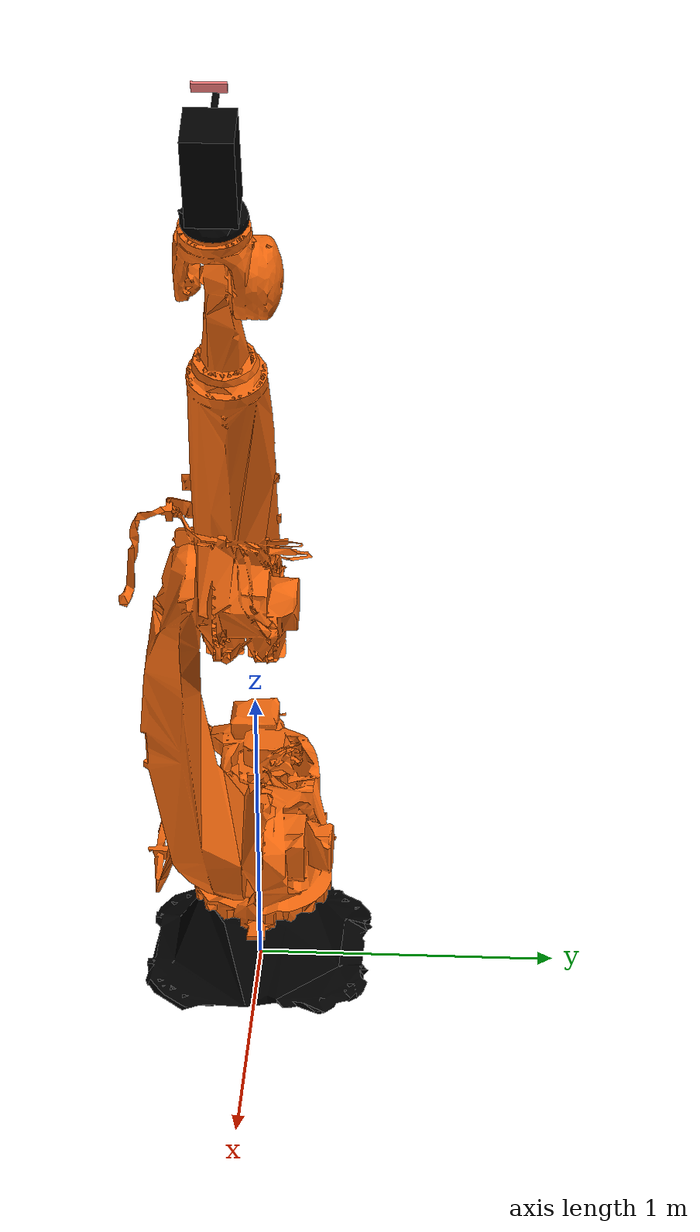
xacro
<?xml version="1.0"?>

<robot xmlns:xacro="http://www.ros.org/wiki/xacro" name="kuka">
    <!-- Include Gazebo Parameters -->
    <xacro:include filename="$(find kuka_description)/urdf/kuka_gazebo.xacro" />

    <!-- Include ros2_control Plugins -->
    <xacro:include filename="$(find kuka_description)/urdf/kuka_ros2_control.xacro" />
    <xacro:include filename="$(find kuka_description)/urdf/depth_camera.xacro" />

    <xacro:property name="PI" value="3.14159265359" />
    <xacro:property name="DEG2RAD" value="0.01745329251" />
    <xacro:property name="effort" value="30.0" />
    <xacro:property name="velocity" value="10.0" />

    <xacro:macro name="default_inertial" params="mass">
        <inertial>
            <origin xyz="0 0 0" rpy="0 0 0"/>
            <mass value="${mass}" />
            <inertia ixx="1.0" ixy="0.0" ixz="0.0"
                     iyy="1.0" iyz="0.0"
                     izz="1.0" />
        </inertial>
    </xacro:macro>

    <xacro:macro name="default_transmission" params="number">
        <transmission name="transmission_${number}">
            <plugin>transmission_interface/SimpleTransmission</plugin>
            <actuator name="motor_${number}" role="actuator1"/>
            <joint name="joint_${number}"    role="joint1">
                <mechanical_reduction>1.0</mechanical_reduction>
            </joint>
        </transmission>
    </xacro:macro>

    <!-- Links -->
    <link name="world"/>

    <link name="base_link">
        <xacro:default_inertial mass="0.1"/>
        <visual>
            <origin rpy="0 0 0" xyz="0 0 0"/>
            <geometry>
                <mesh filename="package://kuka_description/meshes/link0_exp.stl" scale="1 1 1"/>
            </geometry>
            <material name="">
                <color rgba="0 0 0 1"/>
            </material>
        </visual>
        <collision>
            <origin rpy="0 0 0" xyz="0 0 0"/>
            <geometry>
                <mesh filename="package://kuka_description/meshes/link0_exp.stl" scale="1 1 1"/>
            </geometry>
        </collision>
    </link>

    <link name="link_1">
        <xacro:default_inertial mass="0.1"/>
        <visual>
            <origin rpy="-${PI/2} 0 ${PI}" xyz="0.33 0 -0.67"/>
            <geometry>
                <mesh filename="package://kuka_description/meshes/link1_exp.stl" scale="1 1 1"/>
            </geometry>
            <material name="">
                <color rgba="0.9607 0.4117 0.0549 1"/>
            </material>
        </visual>
        <collision>
            <origin rpy="-${PI/2} 0 ${PI}" xyz="0.33 0 -0.67"/>
            <geometry>
                <mesh filename="package://kuka_description/meshes/link1_exp.stl" scale="1 1 1"/>
            </geometry>
        </collision>
    </link>

    <link name="link_2">
        <xacro:default_inertial mass="0.1"/>
        <visual>
            <origin rpy="0 0 ${-2*DEG2RAD}" xyz="1.176 -0.015 0.1"/>
            <geometry>
                <mesh filename="package://kuka_description/meshes/link2_exp.stl" scale="1 1 1"/>
            </geometry>
            <material name="">
                <color rgba="0.9607 0.4117 0.0549 1"/>
            </material>
        </visual>
        <collision>
            <origin rpy="0 0 ${-2*DEG2RAD}" xyz="1.176 -0.015 0.1"/>
            <geometry>
                <mesh filename="package://kuka_description/meshes/link2_exp.stl" scale="1 1 1"/>
            </geometry>
        </collision>
    </link>

    <link name="link_3">
        <xacro:default_inertial mass="0.1"/>
        <visual>
            <origin rpy="${PI/2} 0 ${PI/2}" xyz="-0.03 -0.15 0.01"/>
            <geometry>
                <mesh filename="package://kuka_description/meshes/link3_exp.stl" scale="1 1 1"/>
            </geometry>
            <material name="">
                <color rgba="0.9607 0.4117 0.0549 1"/>
            </material>
        </visual>
        <collision>
            <origin rpy="${PI/2} 0 ${PI/2}" xyz="-0.03 -0.15 0.01"/>
            <geometry>
                <mesh filename="package://kuka_description/meshes/link3_exp.stl" scale="1 1 1"/>
            </geometry>
        </collision>
    </link>

    <link name="link_4">
        <xacro:default_inertial mass="0.1"/>
        <visual>
            <origin rpy="-${PI/2} 0 0" xyz="0 0 -1.2"/>
            <geometry>
                <mesh filename="package://kuka_description/meshes/link4_exp.stl" scale="1 1 1"/>
            </geometry>
            <material name="">
                <color rgba="0.9607 0.4117 0.0549 1"/>
            </material>
        </visual>
        <collision>
            <origin rpy="-${PI/2} 0 0" xyz="0 0 -1.2"/>
            <geometry>
                <mesh filename="package://kuka_description/meshes/link4_exp.stl" scale="1 1 1"/>
            </geometry>
        </collision>
    </link>

    <link name="link_5">
        <xacro:default_inertial mass="0.1"/>
        <visual>
            <origin rpy="${PI/2} 0 ${PI/2}" xyz="-0.03 0 -0.01"/>
            <geometry>
                <mesh filename="package://kuka_description/meshes/link5_exp.stl" scale="1 1 1"/>
            </geometry>
            <material name="">
                <color rgba="0.9607 0.4117 0.0549 1"/>
            </material>
        </visual>
        <collision>
            <origin rpy="${PI/2} 0 ${PI/2}" xyz="-0.03 0 -0.01"/>
            <geometry>
                <mesh filename="package://kuka_description/meshes/link5_exp.stl" scale="1 1 1"/>
            </geometry>
        </collision>
    </link>

    <link name="link_6">
        <xacro:default_inertial mass="0.1"/>
        <visual>
            <origin rpy="0 0 ${PI}" xyz="0 0 0.02"/>
            <geometry>
                <mesh filename="package://kuka_description/meshes/link6_exp.stl" scale="1 1 1"/>
            </geometry>
            <material name="">
                <color rgba="0 0 0 1"/>
            </material>
        </visual>
        <collision>
            <origin rpy="0 0 ${PI}" xyz="0 0 0.02"/>
            <geometry>
                <mesh filename="package://kuka_description/meshes/link6_exp.stl" scale="1 1 1"/>
            </geometry>
        </collision>
    </link>

    <!-- Joints -->
    <!-- Joint Limit Should be justified -->
    <joint name="virtual_joint" type="fixed">
        <parent link="world"/>
        <child link="base_link"/>
        <origin xyz="0 0 0" rpy="0 0 0"/>
    </joint>

    <joint name ="joint_1" type="revolute">
        <parent link="base_link"/>
        <child link = "link_1"/>
        <origin rpy="${PI} 0 0" xyz="0 0 0"/>
        <axis xyz="0 0 1"/>
        <limit lower="-${185*DEG2RAD}" upper="${185*DEG2RAD}"
               effort="${effort}" velocity="${velocity}"/>
    </joint>

    <joint name ="joint_2" type="revolute">
        <parent link="link_1"/>
        <child link = "link_2"/>
        <origin rpy="${PI / 2} 0 0" xyz="0.33 0 -0.645"/>
        <axis xyz="0 0 1"/>
        <limit lower="-${140*DEG2RAD}" upper="-${5*DEG2RAD}"
               effort="${effort}" velocity="${velocity}"/>
    </joint>

    <joint name ="joint_3" type="revolute">
        <parent link="link_2"/>
        <child link = "link_3"/>
        <origin rpy="0 0 0" xyz="1.150 0 0"/>
        <axis xyz="0 0 1"/>
        <limit lower="-${120*DEG2RAD}" upper="${168*DEG2RAD}"
               effort="${effort}" velocity="${velocity}"/>
    </joint>

    <joint name ="joint_4" type="revolute">
        <parent link="link_3"/>
        <child link = "link_4"/>
        <origin rpy="${PI/2} 0 -${PI/2}" xyz="0 -0.115 0"/>
        <axis xyz="0 0 1"/>
        <limit lower="-${350*DEG2RAD}" upper="${350*DEG2RAD}"
               effort="${effort}" velocity="${velocity}"/>
    </joint>

    <joint name ="joint_5" type="revolute">
        <parent link="link_4"/>
        <child link = "link_5"/>
        <origin rpy="-${PI/2} ${PI/2} 0" xyz="0 0 -1.220"/>
        <axis xyz="0 0 1"/>
        <limit lower="-${122.5*DEG2RAD}" upper="${122.5*DEG2RAD}"
               effort="${effort}" velocity="${velocity}"/>
    </joint>

    <joint name ="joint_6" type="revolute">
        <parent link="link_5"/>
        <child link = "link_6"/>
        <origin rpy="${PI/2} 0 -${PI/2}" xyz="0.24 0 0"/>
        <axis xyz="0 0 1"/>
        <limit lower="-${350*DEG2RAD}" upper="${350*DEG2RAD}"
               effort="${effort}" velocity="${velocity}"/>
    </joint>

    <!-- Gripper links -->
    <link name="end_effector_link">
        <xacro:default_inertial mass="0.1" />
        <visual>
            <origin xyz="0.075 0 0.075" rpy="0 0 0" />
            <geometry>
                <box size="0.3 0.15 0.15" /> <!-- x, y, z 방향 크기 지정 -->
            </geometry>
            <material name="">
                <color rgba="0 0 0 1"/>
            </material>
        </visual>
        <collision>
            <origin xyz="0 0 0" rpy="0 0 0" />
            <geometry>
                <box size="0.3 0.15 0.15" /> <!-- x, y, z 방향 크기 지정 -->
            </geometry>
        </collision>
    </link>

    <joint name="end_effector_joint" type="revolute">
        <parent link="link_6" />
        <child link="end_effector_link" />
        <origin xyz="0.075 0 -0.225" rpy="0 -${PI/2} 0" />
        <axis xyz="0 0 1"/>
        <limit lower="0" upper="0"
               effort="${effort}" velocity="${velocity}"/>
    </joint>

    <link name="drill_link">
        <xacro:default_inertial mass="0.05" />
        <visual>
            <origin xyz="0 0 0.075" rpy="0 0 0" />
            <geometry>
                <cylinder radius="0.01" length="0.15" />
            </geometry>
            <material name="">
                <color rgba="0 0 0 1"/>
            </material>
        </visual>
        <collision>
            <origin xyz="0 0 0.075" rpy="0 0 0" />
            <geometry>
                <cylinder radius="0.01" length="0.15" />
            </geometry>
        </collision>
    </link>

    <joint name="drill_joint" type="fixed">
        <parent link="end_effector_link" />
        <child link="drill_link" />
        <origin xyz="0 0 -0.15" rpy="0 0 ${PI}" />
    </joint>

    <transmission name="transmission_end_effector">
        <plugin>transmission_interface/SimpleTransmission</plugin>
        <actuator name="end_effector_motor" role="actuator1"/>
        <joint name="end_effector_joint" role="joint1">
            <mechanical_reduction>1.0</mechanical_reduction>
        </joint>
    </transmission>

    <!-- Transmissions-->
    <xacro:default_transmission number="1"/>
    <xacro:default_transmission number="2"/>
    <xacro:default_transmission number="3"/>
    <xacro:default_transmission number="4"/>
    <xacro:default_transmission number="5"/>
    <xacro:default_transmission number="6"/>
</robot>

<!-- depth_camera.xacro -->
<robot xmlns:xacro="http://www.ros.org/wiki/xacro">
    <xacro:property name="PI" value="3.14159265359" />
    <joint name="camera_joint" type="fixed">
        <parent link="end_effector_link"/>
        <child link="camera_link"/>
        <origin xyz="-0.145 0 0" rpy="0 ${PI/2} 0"/>
    </joint>

    <link name="camera_link">
      <visual>
          <geometry>
              <box size="0.010 0.1 0.03"/>
          </geometry>
          <material name="">
            <color rgba="1 0.5 0.5 1"/>
          </material>

      </visual>
  </link>

    <joint name="camera_optical_joint" type="fixed">
        <parent link="camera_link"/>
        <child link="camera_link_optical"/>
        <origin xyz="0 0 0" rpy="-${PI/2} 0 -${PI/2}"/>
    </joint>

    <link name="camera_link_optical"></link>

    <gazebo reference="camera_link">
        <material>Gazebo/Gray</material>
        <sensor name="camera" type="depth">
            <pose>0 0 0 0 0 0</pose>
            <visualize>true</visualize>
            <update_rate>30</update_rate>
            <camera>
                <horizontal_fov>1.089</horizontal_fov>
                <image>
                    <format>B8G8R8</format>
                    <width>640</width>
                    <height>480</height>
                </image>
                <clip>
                    <near>0.01</near>
                    <far>8.0</far>
                </clip>
            </camera>
            <plugin name="camera_controller" filename="libgazebo_ros_camera.so">
                <frame_name>camera_link_optical</frame_name>
                <min_depth>0.1</min_depth>
                <max_depth>100.0</max_depth>
            </plugin>
        </sensor>
    </gazebo>
</robot>
